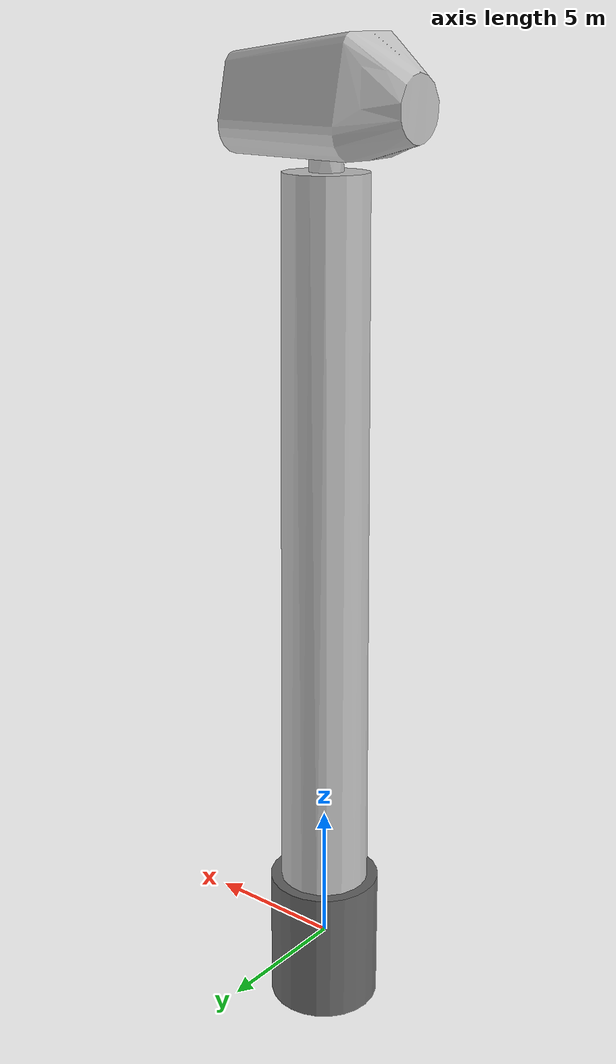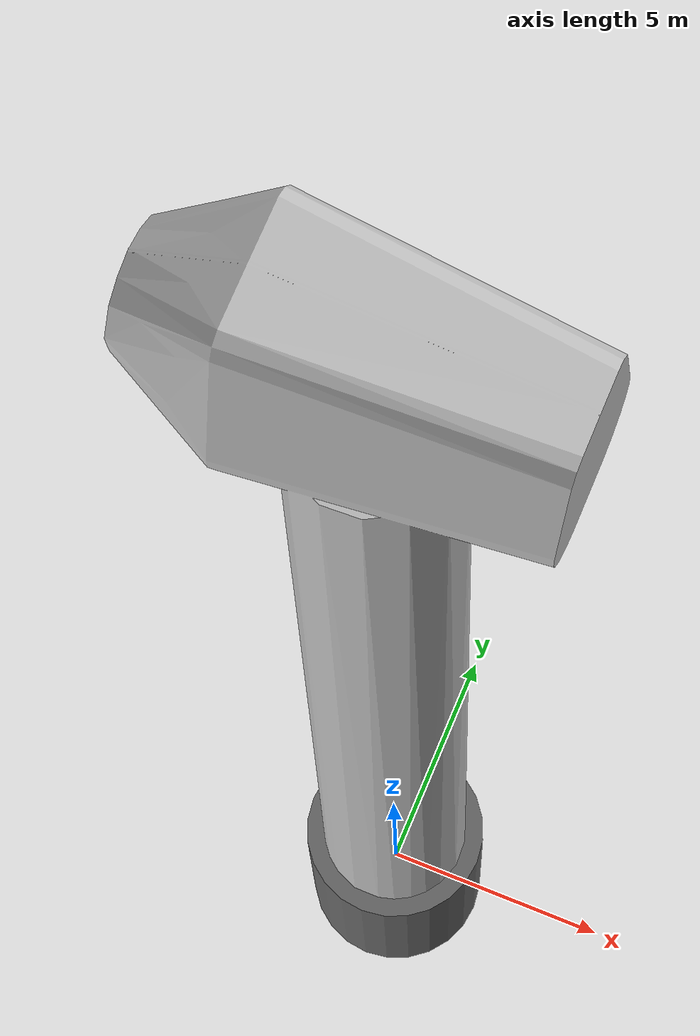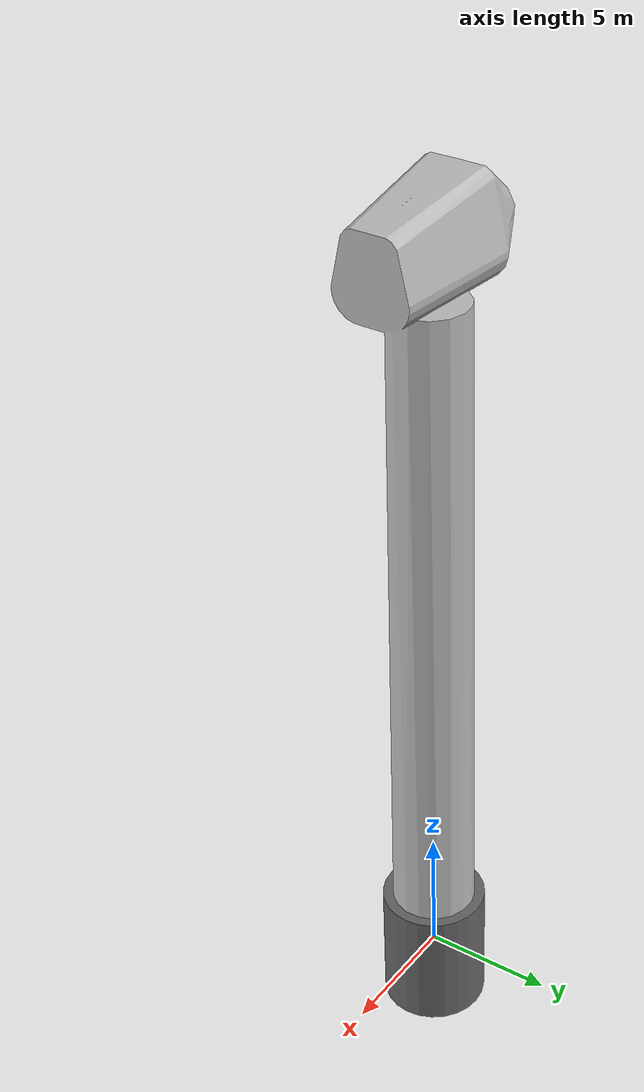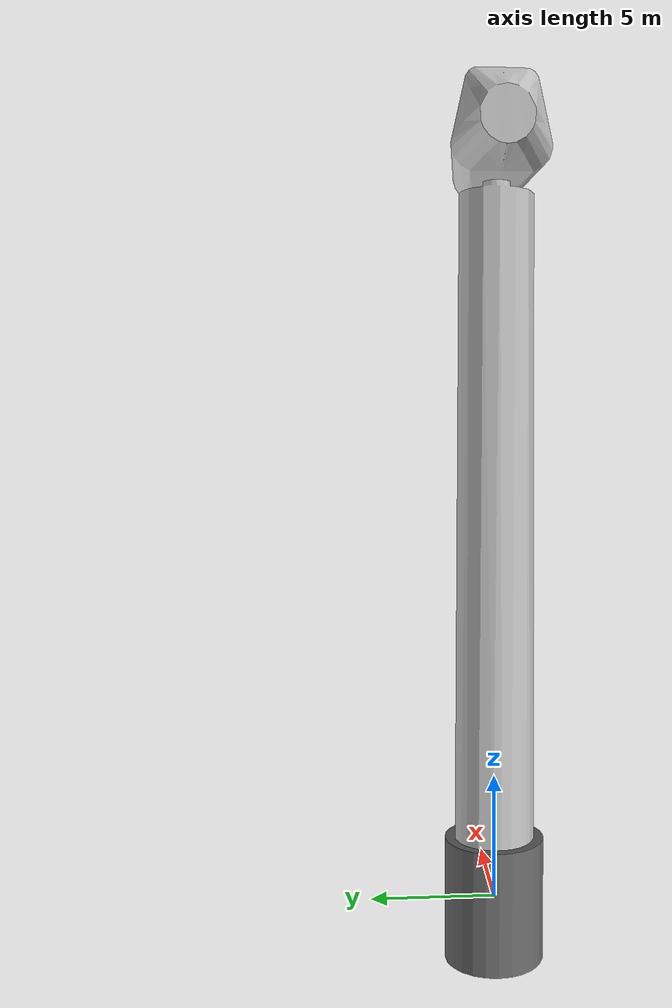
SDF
<?xml version="1.0"?>
<sdf version="1.5">
  <model name="aquabot_windturbine_main">
    <static>true</static>
    <link name="link">
      <!-- Wind turbine basement-->
      <visual name="base">
        <pose>0 0 0 0 0 0</pose>
        <geometry>
          <cylinder>
            <radius>2</radius>
            <length>5</length>
          </cylinder>
        </geometry>
        <material> <!-- base material -->
          <ambient>0.8 0.8 0.8 1</ambient>
          <diffuse>0.4 0.4 0.4 1</diffuse>
          <specular>0.6 0.6 0.6 1</specular>
          <emissive>0 0 0 1</emissive>
        </material>
      </visual>
      <collision name="collision_base">
        <pose>0 0 0 0 0 0</pose>
        <geometry>
          <cylinder>
            <radius>2</radius>
            <length>5</length>
          </cylinder>
        </geometry>
      </collision>
      <!-- Wind turbine mesh main -->
      <visual name="visual">
        <pose>-3.55 0.0 30.0 0 0 0 </pose>
        <geometry>
          <mesh>
            <uri>mesh/main.dae</uri>
          </mesh>
        </geometry>
      </visual>
      <collision name="collision">
        <pose>0 0 15 0 0 0</pose>
        <geometry>
          <cylinder>
            <radius>1.6</radius>
            <length>30</length>
          </cylinder>
        </geometry>
      </collision>
    </link>
  </model>
</sdf>
